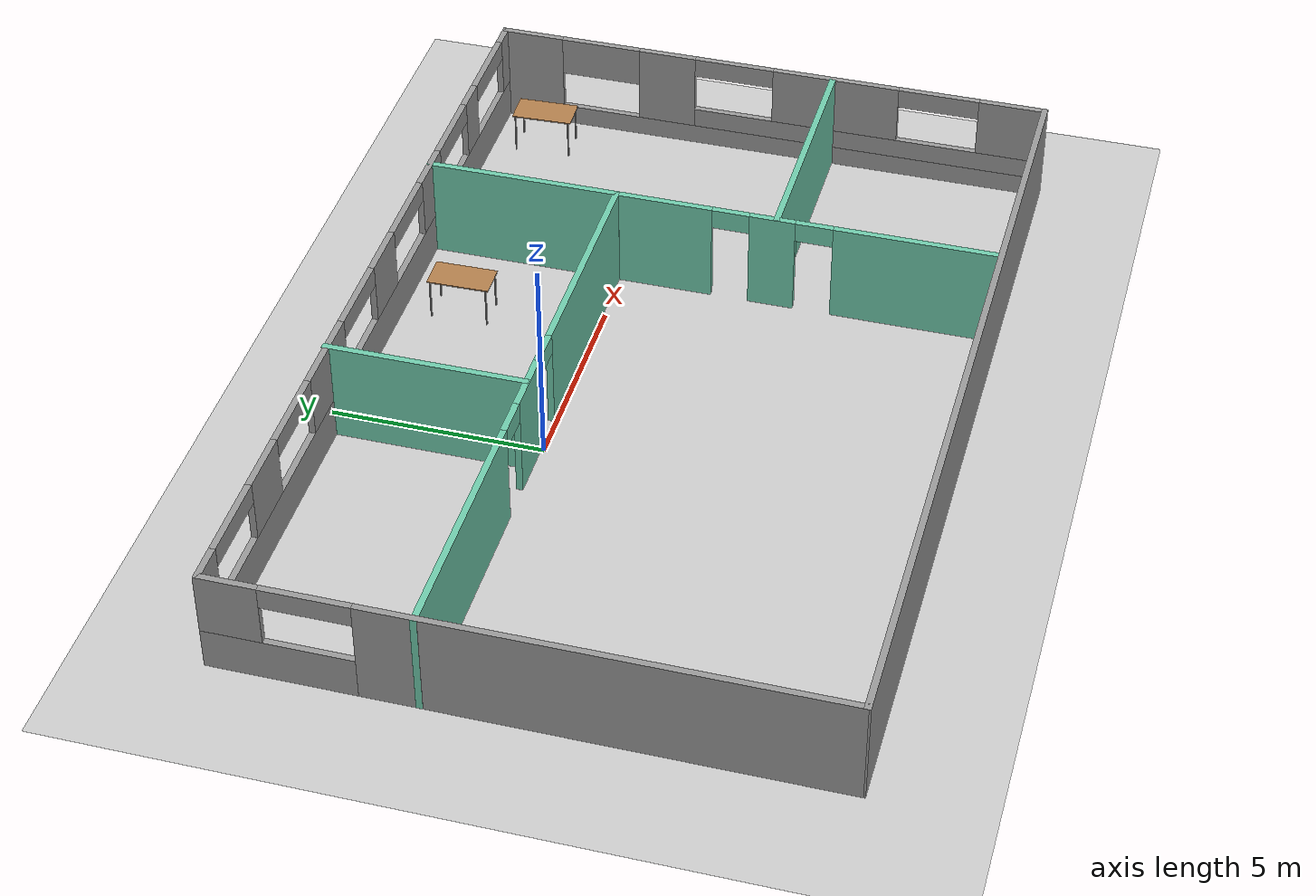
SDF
<sdf version="1.7">
 <world name="default">
  <model name="ground_plane">
   <static>1</static>
   <link name="link">
    <collision name="collision">
     <geometry><plane><normal>0 0 1</normal><size>100 100</size></plane></geometry>
     <surface>
      <contact><collide_bitmask>65535</collide_bitmask></contact>
      <friction><ode><mu>100</mu><mu2>50</mu2></ode></friction>
     </surface>
    </collision>
    <visual name="visual">
     <cast_shadows>0</cast_shadows>
     <geometry><plane><normal>0 0 1</normal><size>100 100</size></plane></geometry>
     <material>
      <script><uri>file://media/materials/scripts/gazebo.material</uri><name>Gazebo/Grey</name></script>
     </material>
    </visual>
   </link>
  </model>
  <model name="myBuilding">
   <pose>2.16453 -2.14271 0 0 -0 0</pose>
   <link name="Wall_1">
    <pose>0.002237 6.86535 0 0 -0 0</pose>
    <visual name="Wall_1_Visual_0">
     <pose>-9.92957 0 1.25 0 -0 0</pose>
     <geometry><box><size>0.890861 0.15 2.5</size></box></geometry>
     <material>
      <script><uri>file://media/materials/scripts/gazebo.material</uri><name>Gazebo/Grey</name></script>
      <ambient>1 1 1 1</ambient>
     </material>
     <meta><layer>0</layer></meta>
    </visual>
    <collision name="Wall_1_Collision_0">
     <geometry><box><size>0.890861 0.15 2.5</size></box></geometry>
     <pose>-9.92957 0 1.25 0 -0 0</pose>
    </collision>
    <visual name="Wall_1_Visual_1">
     <pose>0.44543 0 0.5 0 -0 0</pose>
     <geometry><box><size>19.8591 0.15 1</size></box></geometry>
     <material>
      <script><uri>file://media/materials/scripts/gazebo.material</uri><name>Gazebo/Grey</name></script>
      <ambient>1 1 1 1</ambient>
     </material>
     <meta><layer>0</layer></meta>
    </visual>
    <collision name="Wall_1_Collision_1">
     <geometry><box><size>19.8591 0.15 1</size></box></geometry>
     <pose>0.44543 0 0.5 0 -0 0</pose>
    </collision>
    <visual name="Wall_1_Visual_2">
     <pose>-6.7459 0 1.75 0 -0 0</pose>
     <geometry><box><size>1.47647 0.15 1.5</size></box></geometry>
     <material>
      <script><uri>file://media/materials/scripts/gazebo.material</uri><name>Gazebo/Grey</name></script>
      <ambient>1 1 1 1</ambient>
     </material>
     <meta><layer>0</layer></meta>
    </visual>
    <collision name="Wall_1_Collision_2">
     <geometry><box><size>1.47647 0.15 1.5</size></box></geometry>
     <pose>-6.7459 0 1.75 0 -0 0</pose>
    </collision>
    <visual name="Wall_1_Visual_3">
     <pose>-2.94421 0 1.75 0 -0 0</pose>
     <geometry><box><size>2.12691 0.15 1.5</size></box></geometry>
     <material>
      <script><uri>file://media/materials/scripts/gazebo.material</uri><name>Gazebo/Grey</name></script>
      <ambient>1 1 1 1</ambient>
     </material>
     <meta><layer>0</layer></meta>
    </visual>
    <collision name="Wall_1_Collision_3">
     <geometry><box><size>2.12691 0.15 1.5</size></box></geometry>
     <pose>-2.94421 0 1.75 0 -0 0</pose>
    </collision>
    <visual name="Wall_1_Visual_4">
     <pose>0.812622 0 1.75 0 -0 0</pose>
     <geometry><box><size>1.38676 0.15 1.5</size></box></geometry>
     <material>
      <script><uri>file://media/materials/scripts/gazebo.material</uri><name>Gazebo/Grey</name></script>
      <ambient>1 1 1 1</ambient>
     </material>
     <meta><layer>0</layer></meta>
    </visual>
    <collision name="Wall_1_Collision_4">
     <geometry><box><size>1.38676 0.15 1.5</size></box></geometry>
     <pose>0.812622 0 1.75 0 -0 0</pose>
    </collision>
    <visual name="Wall_1_Visual_5">
     <pose>4.17695 0 1.75 0 -0 0</pose>
     <geometry><box><size>1.3419 0.15 1.5</size></box></geometry>
     <material>
      <script><uri>file://media/materials/scripts/gazebo.material</uri><name>Gazebo/Grey</name></script>
      <ambient>1 1 1 1</ambient>
     </material>
     <meta><layer>0</layer></meta>
    </visual>
    <collision name="Wall_1_Collision_5">
     <geometry><box><size>1.3419 0.15 1.5</size></box></geometry>
     <pose>4.17695 0 1.75 0 -0 0</pose>
    </collision>
    <visual name="Wall_1_Visual_6">
     <pose>7.27213 0 1.75 0 -0 0</pose>
     <geometry><box><size>0.848465 0.15 1.5</size></box></geometry>
     <material>
      <script><uri>file://media/materials/scripts/gazebo.material</uri><name>Gazebo/Grey</name></script>
      <ambient>1 1 1 1</ambient>
     </material>
     <meta><layer>0</layer></meta>
    </visual>
    <collision name="Wall_1_Collision_6">
     <geometry><box><size>0.848465 0.15 1.5</size></box></geometry>
     <pose>7.27213 0 1.75 0 -0 0</pose>
    </collision>
    <visual name="Wall_1_Visual_7">
     <pose>10.0357 0 1.75 0 -0 0</pose>
     <geometry><box><size>0.678634 0.15 1.5</size></box></geometry>
     <material>
      <script><uri>file://media/materials/scripts/gazebo.material</uri><name>Gazebo/Grey</name></script>
      <ambient>1 1 1 1</ambient>
     </material>
     <meta><layer>0</layer></meta>
    </visual>
    <collision name="Wall_1_Collision_7">
     <geometry><box><size>0.678634 0.15 1.5</size></box></geometry>
     <pose>10.0357 0 1.75 0 -0 0</pose>
    </collision>
    <visual name="Wall_1_Visual_8">
     <pose>-8.48414 0 2.25 0 -0 0</pose>
     <geometry><box><size>2 0.15 0.5</size></box></geometry>
     <material>
      <script><uri>file://media/materials/scripts/gazebo.material</uri><name>Gazebo/Grey</name></script>
      <ambient>1 1 1 1</ambient>
     </material>
     <meta><layer>0</layer></meta>
    </visual>
    <collision name="Wall_1_Collision_8">
     <geometry><box><size>2 0.15 0.5</size></box></geometry>
     <pose>-8.48414 0 2.25 0 -0 0</pose>
    </collision>
    <visual name="Wall_1_Visual_9">
     <pose>-5.00767 0 2.25 0 -0 0</pose>
     <geometry><box><size>2 0.15 0.5</size></box></geometry>
     <material>
      <script><uri>file://media/materials/scripts/gazebo.material</uri><name>Gazebo/Grey</name></script>
      <ambient>1 1 1 1</ambient>
     </material>
     <meta><layer>0</layer></meta>
    </visual>
    <collision name="Wall_1_Collision_9">
     <geometry><box><size>2 0.15 0.5</size></box></geometry>
     <pose>-5.00767 0 2.25 0 -0 0</pose>
    </collision>
    <visual name="Wall_1_Visual_10">
     <pose>-0.880757 0 2.25 0 -0 0</pose>
     <geometry><box><size>2 0.15 0.5</size></box></geometry>
     <material>
      <script><uri>file://media/materials/scripts/gazebo.material</uri><name>Gazebo/Grey</name></script>
      <ambient>1 1 1 1</ambient>
     </material>
     <meta><layer>0</layer></meta>
    </visual>
    <collision name="Wall_1_Collision_10">
     <geometry><box><size>2 0.15 0.5</size></box></geometry>
     <pose>-0.880757 0 2.25 0 -0 0</pose>
    </collision>
    <visual name="Wall_1_Visual_11">
     <pose>2.506 0 2.25 0 -0 0</pose>
     <geometry><box><size>2 0.15 0.5</size></box></geometry>
     <material>
      <script><uri>file://media/materials/scripts/gazebo.material</uri><name>Gazebo/Grey</name></script>
      <ambient>1 1 1 1</ambient>
     </material>
     <meta><layer>0</layer></meta>
    </visual>
    <collision name="Wall_1_Collision_11">
     <geometry><box><size>2 0.15 0.5</size></box></geometry>
     <pose>2.506 0 2.25 0 -0 0</pose>
    </collision>
    <visual name="Wall_1_Visual_12">
     <pose>5.8479 0 2.25 0 -0 0</pose>
     <geometry><box><size>2 0.15 0.5</size></box></geometry>
     <material>
      <script><uri>file://media/materials/scripts/gazebo.material</uri><name>Gazebo/Grey</name></script>
      <ambient>1 1 1 1</ambient>
     </material>
     <meta><layer>0</layer></meta>
    </visual>
    <collision name="Wall_1_Collision_12">
     <geometry><box><size>2 0.15 0.5</size></box></geometry>
     <pose>5.8479 0 2.25 0 -0 0</pose>
    </collision>
    <visual name="Wall_1_Visual_13">
     <pose>8.69637 0 2.25 0 -0 0</pose>
     <geometry><box><size>2 0.15 0.5</size></box></geometry>
     <material>
      <script><uri>file://media/materials/scripts/gazebo.material</uri><name>Gazebo/Grey</name></script>
      <ambient>1 1 1 1</ambient>
     </material>
     <meta><layer>0</layer></meta>
    </visual>
    <collision name="Wall_1_Collision_13">
     <geometry><box><size>2 0.15 0.5</size></box></geometry>
     <pose>8.69637 0 2.25 0 -0 0</pose>
    </collision>
   </link>
   <link name="Wall_12">
    <collision name="Wall_12_Collision">
     <geometry><box><size>4.75 0.15 2.5</size></box></geometry>
     <pose>0 0 1.25 0 -0 0</pose>
    </collision>
    <visual name="Wall_12_Visual">
     <pose>0 0 1.25 0 -0 0</pose>
     <geometry><box><size>4.75 0.15 2.5</size></box></geometry>
     <material>
      <script><uri>file://media/materials/scripts/gazebo.material</uri><name>Gazebo/Grey</name></script>
      <ambient>0.435294 0.796078 0.67451 1</ambient>
     </material>
     <meta><layer>0</layer></meta>
    </visual>
    <pose>4.32498 4.56343 0 0 -0 1.5708</pose>
   </link>
   <link name="Wall_14">
    <pose>4.32498 -2.28657 0 0 0 -1.5708</pose>
    <visual name="Wall_14_Visual_0">
     <pose>-3.42191 0 1.25 0 -0 0</pose>
     <geometry><box><size>2.40618 0.15 2.5</size></box></geometry>
     <material>
      <script><uri>file://media/materials/scripts/gazebo.material</uri><name>Gazebo/Grey</name></script>
      <ambient>0.435294 0.796078 0.67451 1</ambient>
     </material>
     <meta><layer>0</layer></meta>
    </visual>
    <collision name="Wall_14_Collision_0">
     <geometry><box><size>2.40618 0.15 2.5</size></box></geometry>
     <pose>-3.42191 0 1.25 0 -0 0</pose>
    </collision>
    <visual name="Wall_14_Visual_1">
     <pose>-0.770737 0 1.25 0 -0 0</pose>
     <geometry><box><size>1.09617 0.15 2.5</size></box></geometry>
     <material>
      <script><uri>file://media/materials/scripts/gazebo.material</uri><name>Gazebo/Grey</name></script>
      <ambient>0.435294 0.796078 0.67451 1</ambient>
     </material>
     <meta><layer>0</layer></meta>
    </visual>
    <collision name="Wall_14_Collision_1">
     <geometry><box><size>1.09617 0.15 2.5</size></box></geometry>
     <pose>-0.770737 0 1.25 0 -0 0</pose>
    </collision>
    <visual name="Wall_14_Visual_2">
     <pose>2.65117 0 1.25 0 -0 0</pose>
     <geometry><box><size>3.94765 0.15 2.5</size></box></geometry>
     <material>
      <script><uri>file://media/materials/scripts/gazebo.material</uri><name>Gazebo/Grey</name></script>
      <ambient>0.435294 0.796078 0.67451 1</ambient>
     </material>
     <meta><layer>0</layer></meta>
    </visual>
    <collision name="Wall_14_Collision_2">
     <geometry><box><size>3.94765 0.15 2.5</size></box></geometry>
     <pose>2.65117 0 1.25 0 -0 0</pose>
    </collision>
    <visual name="Wall_14_Visual_3">
     <pose>-1.76882 0 2.25 0 -0 0</pose>
     <geometry><box><size>0.9 0.15 0.5</size></box></geometry>
     <material>
      <script><uri>file://media/materials/scripts/gazebo.material</uri><name>Gazebo/Grey</name></script>
      <ambient>0.435294 0.796078 0.67451 1</ambient>
     </material>
     <meta><layer>0</layer></meta>
    </visual>
    <collision name="Wall_14_Collision_3">
     <geometry><box><size>0.9 0.15 0.5</size></box></geometry>
     <pose>-1.76882 0 2.25 0 -0 0</pose>
    </collision>
    <visual name="Wall_14_Visual_4">
     <pose>0.227347 0 2.25 0 -0 0</pose>
     <geometry><box><size>0.9 0.15 0.5</size></box></geometry>
     <material>
      <script><uri>file://media/materials/scripts/gazebo.material</uri><name>Gazebo/Grey</name></script>
      <ambient>0.435294 0.796078 0.67451 1</ambient>
     </material>
     <meta><layer>0</layer></meta>
    </visual>
    <collision name="Wall_14_Collision_4">
     <geometry><box><size>0.9 0.15 0.5</size></box></geometry>
     <pose>0.227347 0 2.25 0 -0 0</pose>
    </collision>
   </link>
   <link name="Wall_16">
    <collision name="Wall_16_Collision">
     <geometry><box><size>6 0.15 2.5</size></box></geometry>
     <pose>0 0 1.25 0 -0 0</pose>
    </collision>
    <visual name="Wall_16_Visual">
     <pose>0 0 1.25 0 -0 0</pose>
     <geometry><box><size>6 0.15 2.5</size></box></geometry>
     <material>
      <script><uri>file://media/materials/scripts/gazebo.material</uri><name>Gazebo/Grey</name></script>
      <ambient>0.435294 0.796078 0.67451 1</ambient>
     </material>
     <meta><layer>0</layer></meta>
    </visual>
    <pose>7.2724 -1.61676 0 0 -0 0</pose>
   </link>
   <link name="Wall_2">
    <pose>10.3022 0.007641 0 0 0 -1.5708</pose>
    <visual name="Wall_2_Visual_0">
     <pose>-6.13719 0 1.25 0 -0 0</pose>
     <geometry><box><size>1.59104 0.15 2.5</size></box></geometry>
     <material>
      <script><uri>file://media/materials/scripts/gazebo.material</uri><name>Gazebo/Grey</name></script>
      <ambient>1 1 1 1</ambient>
     </material>
     <meta><layer>0</layer></meta>
    </visual>
    <collision name="Wall_2_Collision_0">
     <geometry><box><size>1.59104 0.15 2.5</size></box></geometry>
     <pose>-6.13719 0 1.25 0 -0 0</pose>
    </collision>
    <visual name="Wall_2_Visual_1">
     <pose>0.79552 0 0.25 0 -0 0</pose>
     <geometry><box><size>12.2744 0.15 0.5</size></box></geometry>
     <material>
      <script><uri>file://media/materials/scripts/gazebo.material</uri><name>Gazebo/Grey</name></script>
      <ambient>1 1 1 1</ambient>
     </material>
     <meta><layer>0</layer></meta>
    </visual>
    <collision name="Wall_2_Collision_1">
     <geometry><box><size>12.2744 0.15 0.5</size></box></geometry>
     <pose>0.79552 0 0.25 0 -0 0</pose>
    </collision>
    <visual name="Wall_2_Visual_2">
     <pose>-2.61465 0 1.5 0 -0 0</pose>
     <geometry><box><size>1.45404 0.15 2</size></box></geometry>
     <material>
      <script><uri>file://media/materials/scripts/gazebo.material</uri><name>Gazebo/Grey</name></script>
      <ambient>1 1 1 1</ambient>
     </material>
     <meta><layer>0</layer></meta>
    </visual>
    <collision name="Wall_2_Collision_2">
     <geometry><box><size>1.45404 0.15 2</size></box></geometry>
     <pose>-2.61465 0 1.5 0 -0 0</pose>
    </collision>
    <visual name="Wall_2_Visual_3">
     <pose>2.52254 0 0.75 0 -0 0</pose>
     <geometry><box><size>8.82034 0.15 0.5</size></box></geometry>
     <material>
      <script><uri>file://media/materials/scripts/gazebo.material</uri><name>Gazebo/Grey</name></script>
      <ambient>1 1 1 1</ambient>
     </material>
     <meta><layer>0</layer></meta>
    </visual>
    <collision name="Wall_2_Collision_3">
     <geometry><box><size>8.82034 0.15 0.5</size></box></geometry>
     <pose>2.52254 0 0.75 0 -0 0</pose>
    </collision>
    <visual name="Wall_2_Visual_4">
     <pose>1.7029 0 1.75 0 -0 0</pose>
     <geometry><box><size>3.18107 0.15 1.5</size></box></geometry>
     <material>
      <script><uri>file://media/materials/scripts/gazebo.material</uri><name>Gazebo/Grey</name></script>
      <ambient>1 1 1 1</ambient>
     </material>
     <meta><layer>0</layer></meta>
    </visual>
    <collision name="Wall_2_Collision_4">
     <geometry><box><size>3.18107 0.15 1.5</size></box></geometry>
     <pose>1.7029 0 1.75 0 -0 0</pose>
    </collision>
    <visual name="Wall_2_Visual_5">
     <pose>6.11308 0 1.75 0 -0 0</pose>
     <geometry><box><size>1.63928 0.15 1.5</size></box></geometry>
     <material>
      <script><uri>file://media/materials/scripts/gazebo.material</uri><name>Gazebo/Grey</name></script>
      <ambient>1 1 1 1</ambient>
     </material>
     <meta><layer>0</layer></meta>
    </visual>
    <collision name="Wall_2_Collision_5">
     <geometry><box><size>1.63928 0.15 1.5</size></box></geometry>
     <pose>6.11308 0 1.75 0 -0 0</pose>
    </collision>
    <visual name="Wall_2_Visual_6">
     <pose>-4.34167 0 2 0 -0 0</pose>
     <geometry><box><size>2 0.15 1</size></box></geometry>
     <material>
      <script><uri>file://media/materials/scripts/gazebo.material</uri><name>Gazebo/Grey</name></script>
      <ambient>1 1 1 1</ambient>
     </material>
     <meta><layer>0</layer></meta>
    </visual>
    <collision name="Wall_2_Collision_6">
     <geometry><box><size>2 0.15 1</size></box></geometry>
     <pose>-4.34167 0 2 0 -0 0</pose>
    </collision>
    <visual name="Wall_2_Visual_7">
     <pose>-0.88763 0 2.25 0 -0 0</pose>
     <geometry><box><size>2 0.15 0.5</size></box></geometry>
     <material>
      <script><uri>file://media/materials/scripts/gazebo.material</uri><name>Gazebo/Grey</name></script>
      <ambient>1 1 1 1</ambient>
     </material>
     <meta><layer>0</layer></meta>
    </visual>
    <collision name="Wall_2_Collision_7">
     <geometry><box><size>2 0.15 0.5</size></box></geometry>
     <pose>-0.88763 0 2.25 0 -0 0</pose>
    </collision>
    <visual name="Wall_2_Visual_8">
     <pose>4.29344 0 2.25 0 -0 0</pose>
     <geometry><box><size>2 0.15 0.5</size></box></geometry>
     <material>
      <script><uri>file://media/materials/scripts/gazebo.material</uri><name>Gazebo/Grey</name></script>
      <ambient>1 1 1 1</ambient>
     </material>
     <meta><layer>0</layer></meta>
    </visual>
    <collision name="Wall_2_Collision_8">
     <geometry><box><size>2 0.15 0.5</size></box></geometry>
     <pose>4.29344 0 2.25 0 -0 0</pose>
    </collision>
   </link>
   <link name="Wall_3">
    <collision name="Wall_3_Collision">
     <geometry><box><size>20.75 0.15 2.5</size></box></geometry>
     <pose>0 0 1.25 0 -0 0</pose>
    </collision>
    <visual name="Wall_3_Visual">
     <pose>0 0 1.25 0 -0 0</pose>
     <geometry><box><size>20.75 0.15 2.5</size></box></geometry>
     <material>
      <script><uri>file://media/materials/scripts/gazebo.material</uri><name>Gazebo/Grey</name></script>
      <ambient>1 1 1 1</ambient>
     </material>
     <meta><layer>0</layer></meta>
    </visual>
    <pose>0.002237 -6.89493 0 0 -0 3.14159</pose>
   </link>
   <link name="Wall_4">
    <pose>-10.2978 0.007641 0 0 -0 1.5708</pose>
    <visual name="Wall_4_Visual_0">
     <pose>-1.68338 0 1.25 0 -0 0</pose>
     <geometry><box><size>10.4987 0.15 2.5</size></box></geometry>
     <material>
      <script><uri>file://media/materials/scripts/gazebo.material</uri><name>Gazebo/Grey</name></script>
      <ambient>1 1 1 1</ambient>
     </material>
     <meta><layer>0</layer></meta>
    </visual>
    <collision name="Wall_4_Collision_0">
     <geometry><box><size>10.4987 0.15 2.5</size></box></geometry>
     <pose>-1.68338 0 1.25 0 -0 0</pose>
    </collision>
    <visual name="Wall_4_Visual_1">
     <pose>5.24934 0 0.5 0 -0 0</pose>
     <geometry><box><size>3.36675 0.15 1</size></box></geometry>
     <material>
      <script><uri>file://media/materials/scripts/gazebo.material</uri><name>Gazebo/Grey</name></script>
      <ambient>1 1 1 1</ambient>
     </material>
     <meta><layer>0</layer></meta>
    </visual>
    <collision name="Wall_4_Collision_1">
     <geometry><box><size>3.36675 0.15 1</size></box></geometry>
     <pose>5.24934 0 0.5 0 -0 0</pose>
    </collision>
    <visual name="Wall_4_Visual_2">
     <pose>6.24934 0 1.75 0 -0 0</pose>
     <geometry><box><size>1.36675 0.15 1.5</size></box></geometry>
     <material>
      <script><uri>file://media/materials/scripts/gazebo.material</uri><name>Gazebo/Grey</name></script>
      <ambient>1 1 1 1</ambient>
     </material>
     <meta><layer>0</layer></meta>
    </visual>
    <collision name="Wall_4_Collision_2">
     <geometry><box><size>1.36675 0.15 1.5</size></box></geometry>
     <pose>6.24934 0 1.75 0 -0 0</pose>
    </collision>
    <visual name="Wall_4_Visual_3">
     <pose>4.56596 0 2.25 0 -0 0</pose>
     <geometry><box><size>2 0.15 0.5</size></box></geometry>
     <material>
      <script><uri>file://media/materials/scripts/gazebo.material</uri><name>Gazebo/Grey</name></script>
      <ambient>1 1 1 1</ambient>
     </material>
     <meta><layer>0</layer></meta>
    </visual>
    <collision name="Wall_4_Collision_3">
     <geometry><box><size>2 0.15 0.5</size></box></geometry>
     <pose>4.56596 0 2.25 0 -0 0</pose>
    </collision>
   </link>
   <link name="Wall_6">
    <pose>-3.00224 2.26527 0 0 -0 0</pose>
    <visual name="Wall_6_Visual_0">
     <pose>-4.40945 0 1.25 0 -0 0</pose>
     <geometry><box><size>5.93111 0.15 2.5</size></box></geometry>
     <material>
      <script><uri>file://media/materials/scripts/gazebo.material</uri><name>Gazebo/Grey</name></script>
      <ambient>0.435294 0.796078 0.67451 1</ambient>
     </material>
     <meta><layer>0</layer></meta>
    </visual>
    <collision name="Wall_6_Collision_0">
     <geometry><box><size>5.93111 0.15 2.5</size></box></geometry>
     <pose>-4.40945 0 1.25 0 -0 0</pose>
    </collision>
    <visual name="Wall_6_Visual_1">
     <pose>0.20605 0 1.25 0 -0 0</pose>
     <geometry><box><size>1.49989 0.15 2.5</size></box></geometry>
     <material>
      <script><uri>file://media/materials/scripts/gazebo.material</uri><name>Gazebo/Grey</name></script>
      <ambient>0.435294 0.796078 0.67451 1</ambient>
     </material>
     <meta><layer>0</layer></meta>
    </visual>
    <collision name="Wall_6_Collision_1">
     <geometry><box><size>1.49989 0.15 2.5</size></box></geometry>
     <pose>0.20605 0 1.25 0 -0 0</pose>
    </collision>
    <visual name="Wall_6_Visual_2">
     <pose>4.6155 0 1.25 0 -0 0</pose>
     <geometry><box><size>5.51901 0.15 2.5</size></box></geometry>
     <material>
      <script><uri>file://media/materials/scripts/gazebo.material</uri><name>Gazebo/Grey</name></script>
      <ambient>0.435294 0.796078 0.67451 1</ambient>
     </material>
     <meta><layer>0</layer></meta>
    </visual>
    <collision name="Wall_6_Collision_2">
     <geometry><box><size>5.51901 0.15 2.5</size></box></geometry>
     <pose>4.6155 0 1.25 0 -0 0</pose>
    </collision>
    <visual name="Wall_6_Visual_3">
     <pose>-0.993894 0 2.25 0 -0 0</pose>
     <geometry><box><size>0.9 0.15 0.5</size></box></geometry>
     <material>
      <script><uri>file://media/materials/scripts/gazebo.material</uri><name>Gazebo/Grey</name></script>
      <ambient>0.435294 0.796078 0.67451 1</ambient>
     </material>
     <meta><layer>0</layer></meta>
    </visual>
    <collision name="Wall_6_Collision_3">
     <geometry><box><size>0.9 0.15 0.5</size></box></geometry>
     <pose>-0.993894 0 2.25 0 -0 0</pose>
    </collision>
    <visual name="Wall_6_Visual_4">
     <pose>1.40599 0 2.25 0 -0 0</pose>
     <geometry><box><size>0.9 0.15 0.5</size></box></geometry>
     <material>
      <script><uri>file://media/materials/scripts/gazebo.material</uri><name>Gazebo/Grey</name></script>
      <ambient>0.435294 0.796078 0.67451 1</ambient>
     </material>
     <meta><layer>0</layer></meta>
    </visual>
    <collision name="Wall_6_Collision_4">
     <geometry><box><size>0.9 0.15 0.5</size></box></geometry>
     <pose>1.40599 0 2.25 0 -0 0</pose>
    </collision>
   </link>
   <link name="Wall_9">
    <collision name="Wall_9_Collision">
     <geometry><box><size>4.75 0.15 2.5</size></box></geometry>
     <pose>0 0 1.25 0 -0 0</pose>
    </collision>
    <visual name="Wall_9_Visual">
     <pose>0 0 1.25 0 -0 0</pose>
     <geometry><box><size>4.75 0.15 2.5</size></box></geometry>
     <material>
      <script><uri>file://media/materials/scripts/gazebo.material</uri><name>Gazebo/Grey</name></script>
      <ambient>0.435294 0.796078 0.67451 1</ambient>
     </material>
     <meta><layer>0</layer></meta>
    </visual>
    <pose>-2.77747 4.59493 0 0 -0 1.5708</pose>
   </link>
   <static>1</static>
  </model>
  <model name="table_15">
   <static>1</static>
   <link name="link">
    <collision name="surface">
     <pose>0 0 1 0 -0 0</pose>
     <geometry><box><size>1.5 0.8 0.03</size></box></geometry>
     <surface><friction><ode><mu>0.6</mu><mu2>0.6</mu2></ode></friction></surface>
    </collision>
    <visual name="visual1">
     <pose>0 0 1 0 -0 0</pose>
     <geometry><box><size>1.5 0.8 0.03</size></box></geometry>
     <material>
      <script><uri>file://media/materials/scripts/gazebo.material</uri><name>Gazebo/Wood</name></script>
     </material>
    </visual>
    <collision name="front_left_leg">
     <pose>0.68 0.38 0.5 0 -0 0</pose>
     <geometry><cylinder><radius>0.02</radius><length>1</length></cylinder></geometry>
    </collision>
    <visual name="front_left_leg">
     <pose>0.68 0.38 0.5 0 -0 0</pose>
     <geometry><cylinder><radius>0.02</radius><length>1</length></cylinder></geometry>
     <material>
      <script><uri>file://media/materials/scripts/gazebo.material</uri><name>Gazebo/Grey</name></script>
     </material>
    </visual>
    <collision name="front_right_leg">
     <pose>0.68 -0.38 0.5 0 -0 0</pose>
     <geometry><cylinder><radius>0.02</radius><length>1</length></cylinder></geometry>
    </collision>
    <visual name="front_right_leg">
     <pose>0.68 -0.38 0.5 0 -0 0</pose>
     <geometry><cylinder><radius>0.02</radius><length>1</length></cylinder></geometry>
     <material>
      <script><uri>file://media/materials/scripts/gazebo.material</uri><name>Gazebo/Grey</name></script>
     </material>
    </visual>
    <collision name="back_right_leg">
     <pose>-0.68 -0.38 0.5 0 -0 0</pose>
     <geometry><cylinder><radius>0.02</radius><length>1</length></cylinder></geometry>
    </collision>
    <visual name="back_right_leg">
     <pose>-0.68 -0.38 0.5 0 -0 0</pose>
     <geometry><cylinder><radius>0.02</radius><length>1</length></cylinder></geometry>
     <material>
      <script><uri>file://media/materials/scripts/gazebo.material</uri><name>Gazebo/Grey</name></script>
     </material>
    </visual>
    <collision name="back_left_leg">
     <pose>-0.68 0.38 0.5 0 -0 0</pose>
     <geometry><cylinder><radius>0.02</radius><length>1</length></cylinder></geometry>
    </collision>
    <visual name="back_left_leg">
     <pose>-0.68 0.38 0.5 0 -0 0</pose>
     <geometry><cylinder><radius>0.02</radius><length>1</length></cylinder></geometry>
     <material>
      <script><uri>file://media/materials/scripts/gazebo.material</uri><name>Gazebo/Grey</name></script>
     </material>
    </visual>
   </link>
   <pose>11.3157 3.37034 0 0 -0 1.61107</pose>
  </model>
  <model name="table_16">
   <static>1</static>
   <link name="link">
    <collision name="surface">
     <pose>0 0 1 0 -0 0</pose>
     <geometry><box><size>1.5 0.8 0.03</size></box></geometry>
     <surface><friction><ode><mu>0.6</mu><mu2>0.6</mu2></ode></friction></surface>
    </collision>
    <visual name="visual1">
     <pose>0 0 1 0 -0 0</pose>
     <geometry><box><size>1.5 0.8 0.03</size></box></geometry>
     <material>
      <script><uri>file://media/materials/scripts/gazebo.material</uri><name>Gazebo/Wood</name></script>
     </material>
    </visual>
    <collision name="front_left_leg">
     <pose>0.68 0.38 0.5 0 -0 0</pose>
     <geometry><cylinder><radius>0.02</radius><length>1</length></cylinder></geometry>
    </collision>
    <visual name="front_left_leg">
     <pose>0.68 0.38 0.5 0 -0 0</pose>
     <geometry><cylinder><radius>0.02</radius><length>1</length></cylinder></geometry>
     <material>
      <script><uri>file://media/materials/scripts/gazebo.material</uri><name>Gazebo/Grey</name></script>
     </material>
    </visual>
    <collision name="front_right_leg">
     <pose>0.68 -0.38 0.5 0 -0 0</pose>
     <geometry><cylinder><radius>0.02</radius><length>1</length></cylinder></geometry>
    </collision>
    <visual name="front_right_leg">
     <pose>0.68 -0.38 0.5 0 -0 0</pose>
     <geometry><cylinder><radius>0.02</radius><length>1</length></cylinder></geometry>
     <material>
      <script><uri>file://media/materials/scripts/gazebo.material</uri><name>Gazebo/Grey</name></script>
     </material>
    </visual>
    <collision name="back_right_leg">
     <pose>-0.68 -0.38 0.5 0 -0 0</pose>
     <geometry><cylinder><radius>0.02</radius><length>1</length></cylinder></geometry>
    </collision>
    <visual name="back_right_leg">
     <pose>-0.68 -0.38 0.5 0 -0 0</pose>
     <geometry><cylinder><radius>0.02</radius><length>1</length></cylinder></geometry>
     <material>
      <script><uri>file://media/materials/scripts/gazebo.material</uri><name>Gazebo/Grey</name></script>
     </material>
    </visual>
    <collision name="back_left_leg">
     <pose>-0.68 0.38 0.5 0 -0 0</pose>
     <geometry><cylinder><radius>0.02</radius><length>1</length></cylinder></geometry>
    </collision>
    <visual name="back_left_leg">
     <pose>-0.68 0.38 0.5 0 -0 0</pose>
     <geometry><cylinder><radius>0.02</radius><length>1</length></cylinder></geometry>
     <material>
      <script><uri>file://media/materials/scripts/gazebo.material</uri><name>Gazebo/Grey</name></script>
     </material>
    </visual>
   </link>
   <pose>4.31655 3.27986 0 0 -0 1.5891</pose>
  </model>
 </world>
</sdf>
